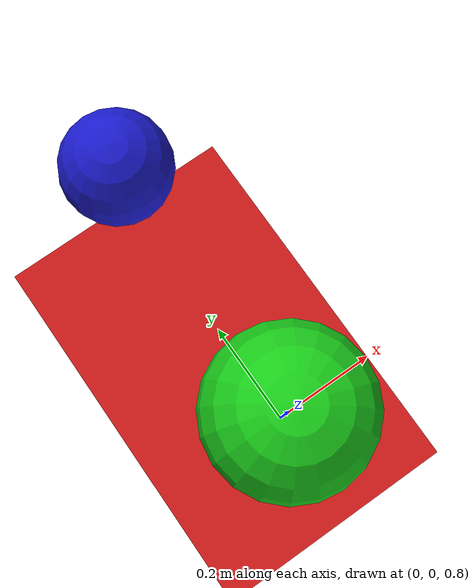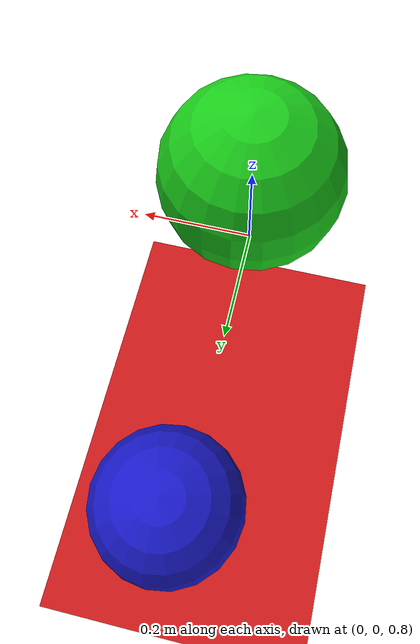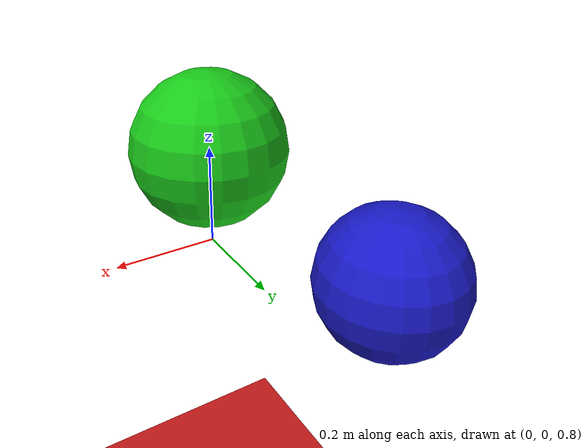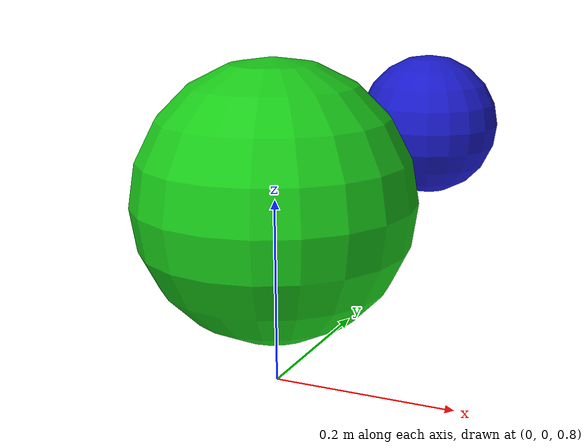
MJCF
<mujoco>

<option gravity = "0 0 -9.81"/>

<worldbody>
    <light diffuse=".5 .5 .5" pos="0 0 2" dir="0 0 -1"/>
    <body name="worldplane">
        <geom type = "box" size = "1 1 .01" rgba =".8 .1 .1 1"/>
    </body>

    <body name = "falling ball" pos = "0 0 1">
        <joint type = "free"/>
        <geom type = "sphere" size = ".15" rgba = ".1 .8 .1 1" mass = "1"/>
    </body>

    <body name="springy_ball" pos = "0 .5 1">
        <joint type = "free" stiffness = "20" damping = "1"/>
        <geom type = "sphere" size = ".1" rgba = ".1 .1 .8 1" mass = "1"/>
    </body>

</worldbody>

</mujoco>
